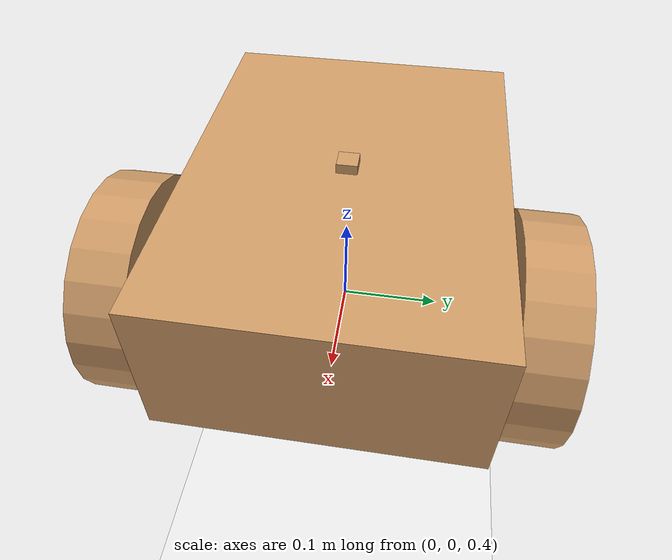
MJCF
<?xml version='1.0' encoding='utf-8'?>
<mujoco model="simple_differential_drive">
  <compiler angle="radian" meshdir="roboshire/examples/differential_drive/meshes" autolimits="true" />
  <option timestep="0.001" gravity="0 0 -9.81" />
  <default>
    <geom rgba="0.8 0.6 0.4 1" friction="1 0.5 0.5" />
  </default>
  <asset>
    <material name="blue" rgba="0.2 0.3 0.8 1.0" />
    <material name="black" rgba="0.1 0.1 0.1 1.0" />
    <material name="grey" rgba="0.5 0.5 0.5 1.0" />
    <material name="red" rgba="0.8 0.2 0.2 1.0" />
  </asset>
  <worldbody>
    <light diffuse="0.5 0.5 0.5" pos="0 0 3" dir="0 0 -1" />
    <geom name="floor" type="plane" size="0 0 1" rgba="0.9 0.9 0.9 1" />
    <body name="base_link" pos="0 0 0.5">
      <freejoint name="base_link_freejoint" />
      <inertial mass="5.0" pos="0 0 0" fullinertia="0.1 0.1 0.1 0.0 0.0 0.0" />
      <geom name="base_link_visual" type="box" group="0" size="0.2 0.15 0.075" material="blue" />
      <geom name="base_link_collision" type="box" group="3" rgba="0.5 0.5 0.5 0.3" size="0.2 0.15 0.075" />
      <body name="left_wheel" pos="0.1 0.175 0">
        <joint name="left_wheel_joint" type="hinge" axis="0 1 0" />
        <inertial mass="0.5" pos="0 0 0" fullinertia="0.01 0.01 0.01 0.0 0.0 0.0" />
        <geom name="left_wheel_visual" type="cylinder" group="0" pos="0 0 0" quat="0.7071054825112363 0.7071080798594735 0.0 0.0" size="0.1 0.025" material="black" />
        <geom name="left_wheel_collision" type="cylinder" group="3" rgba="0.5 0.5 0.5 0.3" pos="0 0 0" quat="0.7071054825112363 0.7071080798594735 0.0 0.0" size="0.1 0.025" />
      </body>
      <body name="right_wheel" pos="0.1 -0.175 0">
        <joint name="right_wheel_joint" type="hinge" axis="0 1 0" />
        <inertial mass="0.5" pos="0 0 0" fullinertia="0.01 0.01 0.01 0.0 0.0 0.0" />
        <geom name="right_wheel_visual" type="cylinder" group="0" pos="0 0 0" quat="0.7071054825112363 0.7071080798594735 0.0 0.0" size="0.1 0.025" material="black" />
        <geom name="right_wheel_collision" type="cylinder" group="3" rgba="0.5 0.5 0.5 0.3" pos="0 0 0" quat="0.7071054825112363 0.7071080798594735 0.0 0.0" size="0.1 0.025" />
      </body>
      <body name="caster_wheel" pos="-0.15 0 -0.05">
        <inertial mass="0.1" pos="0 0 0" fullinertia="0.001 0.001 0.001 0.0 0.0 0.0" />
        <geom name="caster_wheel_visual" type="sphere" group="0" size="0.05" material="grey" />
        <geom name="caster_wheel_collision" type="sphere" group="3" rgba="0.5 0.5 0.5 0.3" size="0.05" />
      </body>
      <body name="imu_link" pos="0 0 0.08">
        <inertial mass="0.01" pos="0 0 0" fullinertia="0.0001 0.0001 0.0001 0.0 0.0 0.0" />
        <geom name="imu_link_visual" type="box" group="0" size="0.01 0.01 0.005" material="red" />
      </body>
    </body>
  </worldbody>
  <actuator>
    <position name="left_wheel_joint_motor" joint="left_wheel_joint" kp="10" />
    <position name="right_wheel_joint_motor" joint="right_wheel_joint" kp="10" />
  </actuator>
  <sensor>
    <jointpos name="left_wheel_joint_pos" joint="left_wheel_joint" />
    <jointvel name="left_wheel_joint_vel" joint="left_wheel_joint" />
    <jointpos name="right_wheel_joint_pos" joint="right_wheel_joint" />
    <jointvel name="right_wheel_joint_vel" joint="right_wheel_joint" />
  </sensor>
</mujoco>
